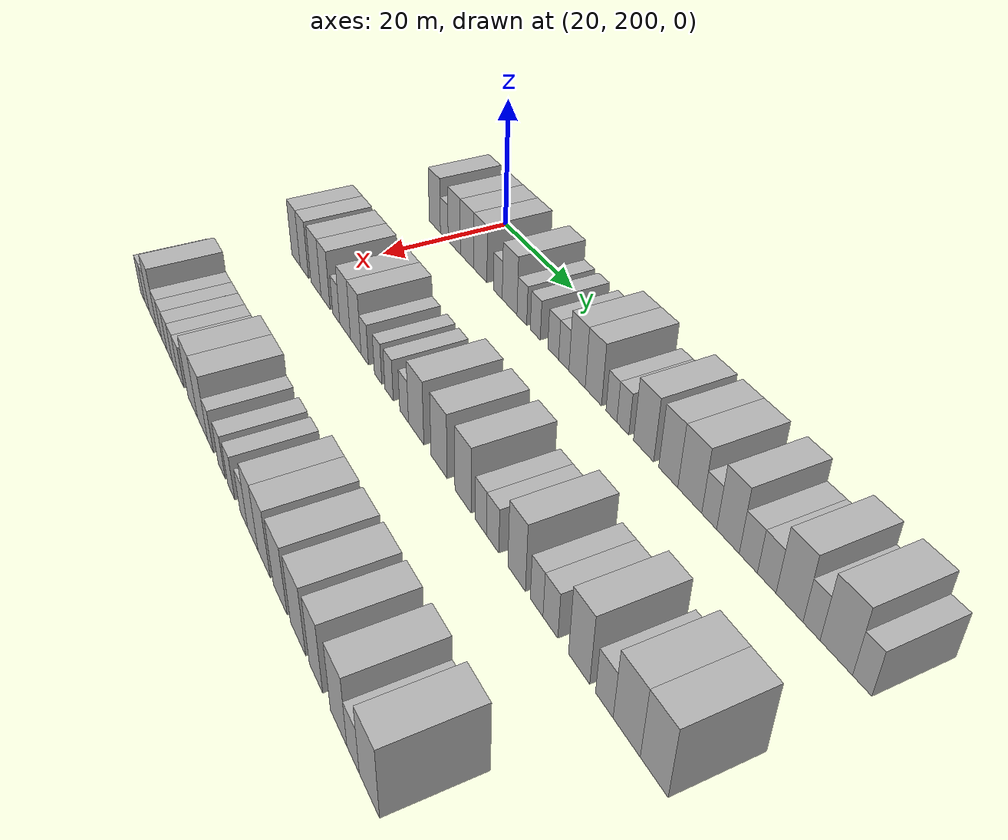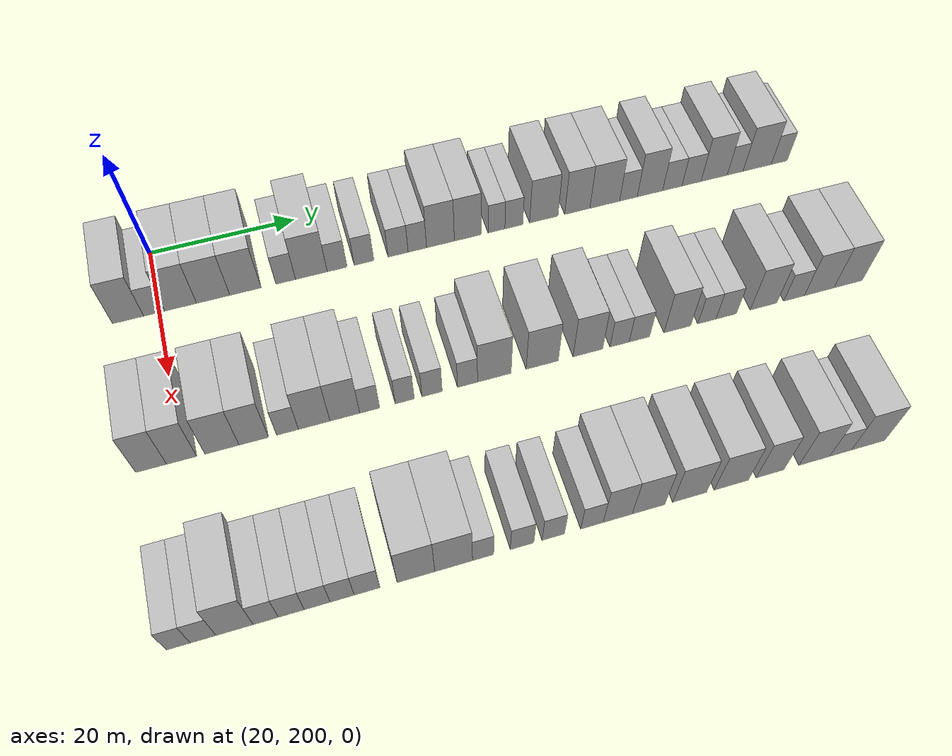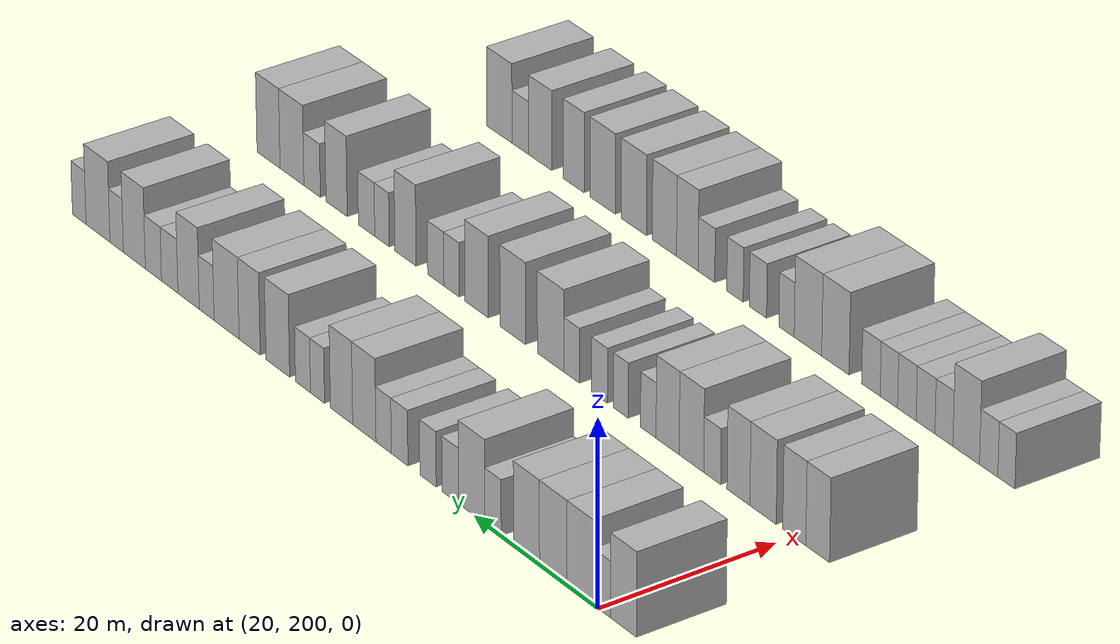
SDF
<sdf version="1.6">
 <world name="default">
  <model name="building_133">
   <static>1</static>
   <pose>25.0000 195.9901 0 0.000000 0.000000 0.000000</pose>
   <link name="link">
    <pose>0 0 4.50 0 0 0</pose>
    <collision name="collision"><geometry><box><size>10.0000 4.0446 9.0000</size></box></geometry></collision>
    <visual name="visual">
     <cast_shadows>0</cast_shadows>
     <geometry><box><size>10.0000 4.0446 9.0000</size></box></geometry>
     <material>
      <script>
       <uri>model://HANNAS_wall/materials/scripts</uri>
       <uri>model://HANNAS_wall/materials/textures</uri>
       <name>vrc/HANNAS_wall</name>
      </script>
     </material>
    </visual>
   </link>
  </model>
  <model name="building_134">
   <static>1</static>
   <pose>25.0000 199.3831 0 0.000000 0.000000 0.000000</pose>
   <link name="link">
    <pose>0 0 3.00 0 0 0</pose>
    <collision name="collision"><geometry><box><size>10.0000 2.7415 6.0000</size></box></geometry></collision>
    <visual name="visual">
     <cast_shadows>0</cast_shadows>
     <geometry><box><size>10.0000 2.7415 6.0000</size></box></geometry>
     <material>
      <script>
       <uri>model://HANNAS_wall/materials/scripts</uri>
       <uri>model://HANNAS_wall/materials/textures</uri>
       <name>vrc/HANNAS_wall</name>
      </script>
     </material>
    </visual>
   </link>
  </model>
  <model name="building_135">
   <static>1</static>
   <pose>25.0000 202.8510 0 0.000000 0.000000 0.000000</pose>
   <link name="link">
    <pose>0 0 4.50 0 0 0</pose>
    <collision name="collision"><geometry><box><size>10.0000 4.1943 9.0000</size></box></geometry></collision>
    <visual name="visual">
     <cast_shadows>0</cast_shadows>
     <geometry><box><size>10.0000 4.1943 9.0000</size></box></geometry>
     <material>
      <script>
       <uri>model://HANNAS_wall/materials/scripts</uri>
       <uri>model://HANNAS_wall/materials/textures</uri>
       <name>vrc/HANNAS_wall</name>
      </script>
     </material>
    </visual>
   </link>
  </model>
  <model name="building_136">
   <static>1</static>
   <pose>25.0000 207.1552 0 0.000000 0.000000 0.000000</pose>
   <link name="link">
    <pose>0 0 4.50 0 0 0</pose>
    <collision name="collision"><geometry><box><size>10.0000 4.4139 9.0000</size></box></geometry></collision>
    <visual name="visual">
     <cast_shadows>0</cast_shadows>
     <geometry><box><size>10.0000 4.4139 9.0000</size></box></geometry>
     <material>
      <script>
       <uri>model://HANNAS_wall/materials/scripts</uri>
       <uri>model://HANNAS_wall/materials/textures</uri>
       <name>vrc/HANNAS_wall</name>
      </script>
     </material>
    </visual>
   </link>
  </model>
  <model name="building_137">
   <static>1</static>
   <pose>25.0000 211.4571 0 0.000000 0.000000 0.000000</pose>
   <link name="link">
    <pose>0 0 4.50 0 0 0</pose>
    <collision name="collision"><geometry><box><size>10.0000 4.1900 9.0000</size></box></geometry></collision>
    <visual name="visual">
     <cast_shadows>0</cast_shadows>
     <geometry><box><size>10.0000 4.1900 9.0000</size></box></geometry>
     <material>
      <script>
       <uri>model://HANNAS_wall/materials/scripts</uri>
       <uri>model://HANNAS_wall/materials/textures</uri>
       <name>vrc/HANNAS_wall</name>
      </script>
     </material>
    </visual>
   </link>
  </model>
  <model name="building_138">
   <static>1</static>
   <pose>25.0000 216.8864 0 0.000000 0.000000 0.000000</pose>
   <link name="link">
    <pose>0 0 3.00 0 0 0</pose>
    <collision name="collision"><geometry><box><size>10.0000 2.6686 6.0000</size></box></geometry></collision>
    <visual name="visual">
     <cast_shadows>0</cast_shadows>
     <geometry><box><size>10.0000 2.6686 6.0000</size></box></geometry>
     <material>
      <script>
       <uri>model://HANNAS_wall/materials/scripts</uri>
       <uri>model://HANNAS_wall/materials/textures</uri>
       <name>vrc/HANNAS_wall</name>
      </script>
     </material>
    </visual>
   </link>
  </model>
  <model name="building_139">
   <static>1</static>
   <pose>25.0000 220.3830 0 0.000000 0.000000 0.000000</pose>
   <link name="link">
    <pose>0 0 4.50 0 0 0</pose>
    <collision name="collision"><geometry><box><size>10.0000 4.3248 9.0000</size></box></geometry></collision>
    <visual name="visual">
     <cast_shadows>0</cast_shadows>
     <geometry><box><size>10.0000 4.3248 9.0000</size></box></geometry>
     <material>
      <script>
       <uri>model://HANNAS_wall/materials/scripts</uri>
       <uri>model://HANNAS_wall/materials/textures</uri>
       <name>vrc/HANNAS_wall</name>
      </script>
     </material>
    </visual>
   </link>
  </model>
  <model name="building_140">
   <static>1</static>
   <pose>25.0000 223.9097 0 0.000000 0.000000 0.000000</pose>
   <link name="link">
    <pose>0 0 3.00 0 0 0</pose>
    <collision name="collision"><geometry><box><size>10.0000 2.7286 6.0000</size></box></geometry></collision>
    <visual name="visual">
     <cast_shadows>0</cast_shadows>
     <geometry><box><size>10.0000 2.7286 6.0000</size></box></geometry>
     <material>
      <script>
       <uri>model://HANNAS_wall/materials/scripts</uri>
       <uri>model://HANNAS_wall/materials/textures</uri>
       <name>vrc/HANNAS_wall</name>
      </script>
     </material>
    </visual>
   </link>
  </model>
  <model name="building_141">
   <static>1</static>
   <pose>25.0000 227.6299 0 0.000000 0.000000 0.000000</pose>
   <link name="link">
    <pose>0 0 3.00 0 0 0</pose>
    <collision name="collision"><geometry><box><size>10.0000 2.7117 6.0000</size></box></geometry></collision>
    <visual name="visual">
     <cast_shadows>0</cast_shadows>
     <geometry><box><size>10.0000 2.7117 6.0000</size></box></geometry>
     <material>
      <script>
       <uri>model://HANNAS_wall/materials/scripts</uri>
       <uri>model://HANNAS_wall/materials/textures</uri>
       <name>vrc/HANNAS_wall</name>
      </script>
     </material>
    </visual>
   </link>
  </model>
  <model name="building_142">
   <static>1</static>
   <pose>25.0000 232.3908 0 0.000000 0.000000 0.000000</pose>
   <link name="link">
    <pose>0 0 3.00 0 0 0</pose>
    <collision name="collision"><geometry><box><size>10.0000 2.8102 6.0000</size></box></geometry></collision>
    <visual name="visual">
     <cast_shadows>0</cast_shadows>
     <geometry><box><size>10.0000 2.8102 6.0000</size></box></geometry>
     <material>
      <script>
       <uri>model://HANNAS_wall/materials/scripts</uri>
       <uri>model://HANNAS_wall/materials/textures</uri>
       <name>vrc/HANNAS_wall</name>
      </script>
     </material>
    </visual>
   </link>
  </model>
  <model name="building_143">
   <static>1</static>
   <pose>25.0000 235.0954 0 0.000000 0.000000 0.000000</pose>
   <link name="link">
    <pose>0 0 3.00 0 0 0</pose>
    <collision name="collision"><geometry><box><size>10.0000 2.5990 6.0000</size></box></geometry></collision>
    <visual name="visual">
     <cast_shadows>0</cast_shadows>
     <geometry><box><size>10.0000 2.5990 6.0000</size></box></geometry>
     <material>
      <script>
       <uri>model://HANNAS_wall/materials/scripts</uri>
       <uri>model://HANNAS_wall/materials/textures</uri>
       <name>vrc/HANNAS_wall</name>
      </script>
     </material>
    </visual>
   </link>
  </model>
  <model name="building_144">
   <static>1</static>
   <pose>25.0000 238.3739 0 0.000000 0.000000 0.000000</pose>
   <link name="link">
    <pose>0 0 4.50 0 0 0</pose>
    <collision name="collision"><geometry><box><size>10.0000 3.9578 9.0000</size></box></geometry></collision>
    <visual name="visual">
     <cast_shadows>0</cast_shadows>
     <geometry><box><size>10.0000 3.9578 9.0000</size></box></geometry>
     <material>
      <script>
       <uri>model://HANNAS_wall/materials/scripts</uri>
       <uri>model://HANNAS_wall/materials/textures</uri>
       <name>vrc/HANNAS_wall</name>
      </script>
     </material>
    </visual>
   </link>
  </model>
  <model name="building_145">
   <static>1</static>
   <pose>25.0000 242.2672 0 0.000000 0.000000 0.000000</pose>
   <link name="link">
    <pose>0 0 4.50 0 0 0</pose>
    <collision name="collision"><geometry><box><size>10.0000 3.8289 9.0000</size></box></geometry></collision>
    <visual name="visual">
     <cast_shadows>0</cast_shadows>
     <geometry><box><size>10.0000 3.8289 9.0000</size></box></geometry>
     <material>
      <script>
       <uri>model://HANNAS_wall/materials/scripts</uri>
       <uri>model://HANNAS_wall/materials/textures</uri>
       <name>vrc/HANNAS_wall</name>
      </script>
     </material>
    </visual>
   </link>
  </model>
  <model name="building_146">
   <static>1</static>
   <pose>25.0000 246.3987 0 0.000000 0.000000 0.000000</pose>
   <link name="link">
    <pose>0 0 3.00 0 0 0</pose>
    <collision name="collision"><geometry><box><size>10.0000 2.4340 6.0000</size></box></geometry></collision>
    <visual name="visual">
     <cast_shadows>0</cast_shadows>
     <geometry><box><size>10.0000 2.4340 6.0000</size></box></geometry>
     <material>
      <script>
       <uri>model://HANNAS_wall/materials/scripts</uri>
       <uri>model://HANNAS_wall/materials/textures</uri>
       <name>vrc/HANNAS_wall</name>
      </script>
     </material>
    </visual>
   </link>
  </model>
  <model name="building_147">
   <static>1</static>
   <pose>25.0000 248.9169 0 0.000000 0.000000 0.000000</pose>
   <link name="link">
    <pose>0 0 3.00 0 0 0</pose>
    <collision name="collision"><geometry><box><size>10.0000 2.6023 6.0000</size></box></geometry></collision>
    <visual name="visual">
     <cast_shadows>0</cast_shadows>
     <geometry><box><size>10.0000 2.6023 6.0000</size></box></geometry>
     <material>
      <script>
       <uri>model://HANNAS_wall/materials/scripts</uri>
       <uri>model://HANNAS_wall/materials/textures</uri>
       <name>vrc/HANNAS_wall</name>
      </script>
     </material>
    </visual>
   </link>
  </model>
  <model name="building_148">
   <static>1</static>
   <pose>25.0000 253.2998 0 0.000000 0.000000 0.000000</pose>
   <link name="link">
    <pose>0 0 4.50 0 0 0</pose>
    <collision name="collision"><geometry><box><size>10.0000 4.1634 9.0000</size></box></geometry></collision>
    <visual name="visual">
     <cast_shadows>0</cast_shadows>
     <geometry><box><size>10.0000 4.1634 9.0000</size></box></geometry>
     <material>
      <script>
       <uri>model://HANNAS_wall/materials/scripts</uri>
       <uri>model://HANNAS_wall/materials/textures</uri>
       <name>vrc/HANNAS_wall</name>
      </script>
     </material>
    </visual>
   </link>
  </model>
  <model name="building_149">
   <static>1</static>
   <pose>25.0000 258.2500 0 0.000000 0.000000 0.000000</pose>
   <link name="link">
    <pose>0 0 4.50 0 0 0</pose>
    <collision name="collision"><geometry><box><size>10.0000 3.7370 9.0000</size></box></geometry></collision>
    <visual name="visual">
     <cast_shadows>0</cast_shadows>
     <geometry><box><size>10.0000 3.7370 9.0000</size></box></geometry>
     <material>
      <script>
       <uri>model://HANNAS_wall/materials/scripts</uri>
       <uri>model://HANNAS_wall/materials/textures</uri>
       <name>vrc/HANNAS_wall</name>
      </script>
     </material>
    </visual>
   </link>
  </model>
  <model name="building_150">
   <static>1</static>
   <pose>25.0000 262.3416 0 0.000000 0.000000 0.000000</pose>
   <link name="link">
    <pose>0 0 4.50 0 0 0</pose>
    <collision name="collision"><geometry><box><size>10.0000 4.4462 9.0000</size></box></geometry></collision>
    <visual name="visual">
     <cast_shadows>0</cast_shadows>
     <geometry><box><size>10.0000 4.4462 9.0000</size></box></geometry>
     <material>
      <script>
       <uri>model://HANNAS_wall/materials/scripts</uri>
       <uri>model://HANNAS_wall/materials/textures</uri>
       <name>vrc/HANNAS_wall</name>
      </script>
     </material>
    </visual>
   </link>
  </model>
  <model name="building_151">
   <static>1</static>
   <pose>25.0000 265.8922 0 0.000000 0.000000 0.000000</pose>
   <link name="link">
    <pose>0 0 3.00 0 0 0</pose>
    <collision name="collision"><geometry><box><size>10.0000 2.6550 6.0000</size></box></geometry></collision>
    <visual name="visual">
     <cast_shadows>0</cast_shadows>
     <geometry><box><size>10.0000 2.6550 6.0000</size></box></geometry>
     <material>
      <script>
       <uri>model://HANNAS_wall/materials/scripts</uri>
       <uri>model://HANNAS_wall/materials/textures</uri>
       <name>vrc/HANNAS_wall</name>
      </script>
     </material>
    </visual>
   </link>
  </model>
  <model name="building_152">
   <static>1</static>
   <pose>25.0000 269.1450 0 0.000000 0.000000 0.000000</pose>
   <link name="link">
    <pose>0 0 4.50 0 0 0</pose>
    <collision name="collision"><geometry><box><size>10.0000 3.8507 9.0000</size></box></geometry></collision>
    <visual name="visual">
     <cast_shadows>0</cast_shadows>
     <geometry><box><size>10.0000 3.8507 9.0000</size></box></geometry>
     <material>
      <script>
       <uri>model://HANNAS_wall/materials/scripts</uri>
       <uri>model://HANNAS_wall/materials/textures</uri>
       <name>vrc/HANNAS_wall</name>
      </script>
     </material>
    </visual>
   </link>
  </model>
  <model name="building_153">
   <static>1</static>
   <pose>25.0000 272.5574 0 0.000000 0.000000 0.000000</pose>
   <link name="link">
    <pose>0 0 3.00 0 0 0</pose>
    <collision name="collision"><geometry><box><size>10.0000 2.9741 6.0000</size></box></geometry></collision>
    <visual name="visual">
     <cast_shadows>0</cast_shadows>
     <geometry><box><size>10.0000 2.9741 6.0000</size></box></geometry>
     <material>
      <script>
       <uri>model://HANNAS_wall/materials/scripts</uri>
       <uri>model://HANNAS_wall/materials/textures</uri>
       <name>vrc/HANNAS_wall</name>
      </script>
     </material>
    </visual>
   </link>
  </model>
  <model name="building_154">
   <static>1</static>
   <pose>25.0000 275.5117 0 0.000000 0.000000 0.000000</pose>
   <link name="link">
    <pose>0 0 3.00 0 0 0</pose>
    <collision name="collision"><geometry><box><size>10.0000 2.9344 6.0000</size></box></geometry></collision>
    <visual name="visual">
     <cast_shadows>0</cast_shadows>
     <geometry><box><size>10.0000 2.9344 6.0000</size></box></geometry>
     <material>
      <script>
       <uri>model://HANNAS_wall/materials/scripts</uri>
       <uri>model://HANNAS_wall/materials/textures</uri>
       <name>vrc/HANNAS_wall</name>
      </script>
     </material>
    </visual>
   </link>
  </model>
  <model name="building_155">
   <static>1</static>
   <pose>25.0000 279.0029 0 0.000000 0.000000 0.000000</pose>
   <link name="link">
    <pose>0 0 4.50 0 0 0</pose>
    <collision name="collision"><geometry><box><size>10.0000 4.0480 9.0000</size></box></geometry></collision>
    <visual name="visual">
     <cast_shadows>0</cast_shadows>
     <geometry><box><size>10.0000 4.0480 9.0000</size></box></geometry>
     <material>
      <script>
       <uri>model://HANNAS_wall/materials/scripts</uri>
       <uri>model://HANNAS_wall/materials/textures</uri>
       <name>vrc/HANNAS_wall</name>
      </script>
     </material>
    </visual>
   </link>
  </model>
  <model name="building_156">
   <static>1</static>
   <pose>25.0000 282.2533 0 0.000000 0.000000 0.000000</pose>
   <link name="link">
    <pose>0 0 3.00 0 0 0</pose>
    <collision name="collision"><geometry><box><size>10.0000 2.4528 6.0000</size></box></geometry></collision>
    <visual name="visual">
     <cast_shadows>0</cast_shadows>
     <geometry><box><size>10.0000 2.4528 6.0000</size></box></geometry>
     <material>
      <script>
       <uri>model://HANNAS_wall/materials/scripts</uri>
       <uri>model://HANNAS_wall/materials/textures</uri>
       <name>vrc/HANNAS_wall</name>
      </script>
     </material>
    </visual>
   </link>
  </model>
  <model name="building_157">
   <static>1</static>
   <pose>25.0000 285.7046 0 0.000000 0.000000 0.000000</pose>
   <link name="link">
    <pose>0 0 4.50 0 0 0</pose>
    <collision name="collision"><geometry><box><size>10.0000 4.4498 9.0000</size></box></geometry></collision>
    <visual name="visual">
     <cast_shadows>0</cast_shadows>
     <geometry><box><size>10.0000 4.4498 9.0000</size></box></geometry>
     <material>
      <script>
       <uri>model://HANNAS_wall/materials/scripts</uri>
       <uri>model://HANNAS_wall/materials/textures</uri>
       <name>vrc/HANNAS_wall</name>
      </script>
     </material>
    </visual>
   </link>
  </model>
  <model name="building_158">
   <static>1</static>
   <pose>25.0000 289.1934 0 0.000000 0.000000 0.000000</pose>
   <link name="link">
    <pose>0 0 3.00 0 0 0</pose>
    <collision name="collision"><geometry><box><size>10.0000 2.5278 6.0000</size></box></geometry></collision>
    <visual name="visual">
     <cast_shadows>0</cast_shadows>
     <geometry><box><size>10.0000 2.5278 6.0000</size></box></geometry>
     <material>
      <script>
       <uri>model://HANNAS_wall/materials/scripts</uri>
       <uri>model://HANNAS_wall/materials/textures</uri>
       <name>vrc/HANNAS_wall</name>
      </script>
     </material>
    </visual>
   </link>
  </model>
  <model name="building_323">
   <static>1</static>
   <pose>47.0000 196.2749 0 0.000000 0.000000 0.000000</pose>
   <link name="link">
    <pose>0 0 4.50 0 0 0</pose>
    <collision name="collision"><geometry><box><size>10.0000 3.6909 9.0000</size></box></geometry></collision>
    <visual name="visual">
     <cast_shadows>0</cast_shadows>
     <geometry><box><size>10.0000 3.6909 9.0000</size></box></geometry>
     <material>
      <script>
       <uri>model://HANNAS_wall/materials/scripts</uri>
       <uri>model://HANNAS_wall/materials/textures</uri>
       <name>vrc/HANNAS_wall</name>
      </script>
     </material>
    </visual>
   </link>
  </model>
  <model name="building_324">
   <static>1</static>
   <pose>47.0000 199.9234 0 0.000000 0.000000 0.000000</pose>
   <link name="link">
    <pose>0 0 4.50 0 0 0</pose>
    <collision name="collision"><geometry><box><size>10.0000 3.6062 9.0000</size></box></geometry></collision>
    <visual name="visual">
     <cast_shadows>0</cast_shadows>
     <geometry><box><size>10.0000 3.6062 9.0000</size></box></geometry>
     <material>
      <script>
       <uri>model://HANNAS_wall/materials/scripts</uri>
       <uri>model://HANNAS_wall/materials/textures</uri>
       <name>vrc/HANNAS_wall</name>
      </script>
     </material>
    </visual>
   </link>
  </model>
  <model name="building_325">
   <static>1</static>
   <pose>47.0000 204.8001 0 0.000000 0.000000 0.000000</pose>
   <link name="link">
    <pose>0 0 4.50 0 0 0</pose>
    <collision name="collision"><geometry><box><size>10.0000 4.1473 9.0000</size></box></geometry></collision>
    <visual name="visual">
     <cast_shadows>0</cast_shadows>
     <geometry><box><size>10.0000 4.1473 9.0000</size></box></geometry>
     <material>
      <script>
       <uri>model://HANNAS_wall/materials/scripts</uri>
       <uri>model://HANNAS_wall/materials/textures</uri>
       <name>vrc/HANNAS_wall</name>
      </script>
     </material>
    </visual>
   </link>
  </model>
  <model name="building_326">
   <static>1</static>
   <pose>47.0000 208.6853 0 0.000000 0.000000 0.000000</pose>
   <link name="link">
    <pose>0 0 4.50 0 0 0</pose>
    <collision name="collision"><geometry><box><size>10.0000 3.6232 9.0000</size></box></geometry></collision>
    <visual name="visual">
     <cast_shadows>0</cast_shadows>
     <geometry><box><size>10.0000 3.6232 9.0000</size></box></geometry>
     <material>
      <script>
       <uri>model://HANNAS_wall/materials/scripts</uri>
       <uri>model://HANNAS_wall/materials/textures</uri>
       <name>vrc/HANNAS_wall</name>
      </script>
     </material>
    </visual>
   </link>
  </model>
  <model name="building_327">
   <static>1</static>
   <pose>47.0000 212.8510 0 0.000000 0.000000 0.000000</pose>
   <link name="link">
    <pose>0 0 3.00 0 0 0</pose>
    <collision name="collision"><geometry><box><size>10.0000 2.7082 6.0000</size></box></geometry></collision>
    <visual name="visual">
     <cast_shadows>0</cast_shadows>
     <geometry><box><size>10.0000 2.7082 6.0000</size></box></geometry>
     <material>
      <script>
       <uri>model://HANNAS_wall/materials/scripts</uri>
       <uri>model://HANNAS_wall/materials/textures</uri>
       <name>vrc/HANNAS_wall</name>
      </script>
     </material>
    </visual>
   </link>
  </model>
  <model name="building_328">
   <static>1</static>
   <pose>47.0000 216.1793 0 0.000000 0.000000 0.000000</pose>
   <link name="link">
    <pose>0 0 4.50 0 0 0</pose>
    <collision name="collision"><geometry><box><size>10.0000 3.9483 9.0000</size></box></geometry></collision>
    <visual name="visual">
     <cast_shadows>0</cast_shadows>
     <geometry><box><size>10.0000 3.9483 9.0000</size></box></geometry>
     <material>
      <script>
       <uri>model://HANNAS_wall/materials/scripts</uri>
       <uri>model://HANNAS_wall/materials/textures</uri>
       <name>vrc/HANNAS_wall</name>
      </script>
     </material>
    </visual>
   </link>
  </model>
  <model name="building_329">
   <static>1</static>
   <pose>47.0000 220.0280 0 0.000000 0.000000 0.000000</pose>
   <link name="link">
    <pose>0 0 4.50 0 0 0</pose>
    <collision name="collision"><geometry><box><size>10.0000 3.7492 9.0000</size></box></geometry></collision>
    <visual name="visual">
     <cast_shadows>0</cast_shadows>
     <geometry><box><size>10.0000 3.7492 9.0000</size></box></geometry>
     <material>
      <script>
       <uri>model://HANNAS_wall/materials/scripts</uri>
       <uri>model://HANNAS_wall/materials/textures</uri>
       <name>vrc/HANNAS_wall</name>
      </script>
     </material>
    </visual>
   </link>
  </model>
  <model name="building_330">
   <static>1</static>
   <pose>47.0000 223.1683 0 0.000000 0.000000 0.000000</pose>
   <link name="link">
    <pose>0 0 3.00 0 0 0</pose>
    <collision name="collision"><geometry><box><size>10.0000 2.5314 6.0000</size></box></geometry></collision>
    <visual name="visual">
     <cast_shadows>0</cast_shadows>
     <geometry><box><size>10.0000 2.5314 6.0000</size></box></geometry>
     <material>
      <script>
       <uri>model://HANNAS_wall/materials/scripts</uri>
       <uri>model://HANNAS_wall/materials/textures</uri>
       <name>vrc/HANNAS_wall</name>
      </script>
     </material>
    </visual>
   </link>
  </model>
  <model name="building_331">
   <static>1</static>
   <pose>47.0000 227.6521 0 0.000000 0.000000 0.000000</pose>
   <link name="link">
    <pose>0 0 3.00 0 0 0</pose>
    <collision name="collision"><geometry><box><size>10.0000 2.4362 6.0000</size></box></geometry></collision>
    <visual name="visual">
     <cast_shadows>0</cast_shadows>
     <geometry><box><size>10.0000 2.4362 6.0000</size></box></geometry>
     <material>
      <script>
       <uri>model://HANNAS_wall/materials/scripts</uri>
       <uri>model://HANNAS_wall/materials/textures</uri>
       <name>vrc/HANNAS_wall</name>
      </script>
     </material>
    </visual>
   </link>
  </model>
  <model name="building_332">
   <static>1</static>
   <pose>47.0000 231.1790 0 0.000000 0.000000 0.000000</pose>
   <link name="link">
    <pose>0 0 3.00 0 0 0</pose>
    <collision name="collision"><geometry><box><size>10.0000 2.6176 6.0000</size></box></geometry></collision>
    <visual name="visual">
     <cast_shadows>0</cast_shadows>
     <geometry><box><size>10.0000 2.6176 6.0000</size></box></geometry>
     <material>
      <script>
       <uri>model://HANNAS_wall/materials/scripts</uri>
       <uri>model://HANNAS_wall/materials/textures</uri>
       <name>vrc/HANNAS_wall</name>
      </script>
     </material>
    </visual>
   </link>
  </model>
  <model name="building_333">
   <static>1</static>
   <pose>47.0000 235.7939 0 0.000000 0.000000 0.000000</pose>
   <link name="link">
    <pose>0 0 3.00 0 0 0</pose>
    <collision name="collision"><geometry><box><size>10.0000 2.6123 6.0000</size></box></geometry></collision>
    <visual name="visual">
     <cast_shadows>0</cast_shadows>
     <geometry><box><size>10.0000 2.6123 6.0000</size></box></geometry>
     <material>
      <script>
       <uri>model://HANNAS_wall/materials/scripts</uri>
       <uri>model://HANNAS_wall/materials/textures</uri>
       <name>vrc/HANNAS_wall</name>
      </script>
     </material>
    </visual>
   </link>
  </model>
  <model name="building_334">
   <static>1</static>
   <pose>47.0000 239.3203 0 0.000000 0.000000 0.000000</pose>
   <link name="link">
    <pose>0 0 4.50 0 0 0</pose>
    <collision name="collision"><geometry><box><size>10.0000 4.4405 9.0000</size></box></geometry></collision>
    <visual name="visual">
     <cast_shadows>0</cast_shadows>
     <geometry><box><size>10.0000 4.4405 9.0000</size></box></geometry>
     <material>
      <script>
       <uri>model://HANNAS_wall/materials/scripts</uri>
       <uri>model://HANNAS_wall/materials/textures</uri>
       <name>vrc/HANNAS_wall</name>
      </script>
     </material>
    </visual>
   </link>
  </model>
  <model name="building_335">
   <static>1</static>
   <pose>47.0000 245.6986 0 0.000000 0.000000 0.000000</pose>
   <link name="link">
    <pose>0 0 4.50 0 0 0</pose>
    <collision name="collision"><geometry><box><size>10.0000 4.3161 9.0000</size></box></geometry></collision>
    <visual name="visual">
     <cast_shadows>0</cast_shadows>
     <geometry><box><size>10.0000 4.3161 9.0000</size></box></geometry>
     <material>
      <script>
       <uri>model://HANNAS_wall/materials/scripts</uri>
       <uri>model://HANNAS_wall/materials/textures</uri>
       <name>vrc/HANNAS_wall</name>
      </script>
     </material>
    </visual>
   </link>
  </model>
  <model name="building_336">
   <static>1</static>
   <pose>47.0000 251.8681 0 0.000000 0.000000 0.000000</pose>
   <link name="link">
    <pose>0 0 4.50 0 0 0</pose>
    <collision name="collision"><geometry><box><size>10.0000 4.0230 9.0000</size></box></geometry></collision>
    <visual name="visual">
     <cast_shadows>0</cast_shadows>
     <geometry><box><size>10.0000 4.0230 9.0000</size></box></geometry>
     <material>
      <script>
       <uri>model://HANNAS_wall/materials/scripts</uri>
       <uri>model://HANNAS_wall/materials/textures</uri>
       <name>vrc/HANNAS_wall</name>
      </script>
     </material>
    </visual>
   </link>
  </model>
  <model name="building_337">
   <static>1</static>
   <pose>47.0000 256.2046 0 0.000000 0.000000 0.000000</pose>
   <link name="link">
    <pose>0 0 3.00 0 0 0</pose>
    <collision name="collision"><geometry><box><size>10.0000 2.6501 6.0000</size></box></geometry></collision>
    <visual name="visual">
     <cast_shadows>0</cast_shadows>
     <geometry><box><size>10.0000 2.6501 6.0000</size></box></geometry>
     <material>
      <script>
       <uri>model://HANNAS_wall/materials/scripts</uri>
       <uri>model://HANNAS_wall/materials/textures</uri>
       <name>vrc/HANNAS_wall</name>
      </script>
     </material>
    </visual>
   </link>
  </model>
  <model name="building_338">
   <static>1</static>
   <pose>47.0000 258.9430 0 0.000000 0.000000 0.000000</pose>
   <link name="link">
    <pose>0 0 3.00 0 0 0</pose>
    <collision name="collision"><geometry><box><size>10.0000 2.8265 6.0000</size></box></geometry></collision>
    <visual name="visual">
     <cast_shadows>0</cast_shadows>
     <geometry><box><size>10.0000 2.8265 6.0000</size></box></geometry>
     <material>
      <script>
       <uri>model://HANNAS_wall/materials/scripts</uri>
       <uri>model://HANNAS_wall/materials/textures</uri>
       <name>vrc/HANNAS_wall</name>
      </script>
     </material>
    </visual>
   </link>
  </model>
  <model name="building_339">
   <static>1</static>
   <pose>47.0000 264.2258 0 0.000000 0.000000 0.000000</pose>
   <link name="link">
    <pose>0 0 4.50 0 0 0</pose>
    <collision name="collision"><geometry><box><size>10.0000 3.7393 9.0000</size></box></geometry></collision>
    <visual name="visual">
     <cast_shadows>0</cast_shadows>
     <geometry><box><size>10.0000 3.7393 9.0000</size></box></geometry>
     <material>
      <script>
       <uri>model://HANNAS_wall/materials/scripts</uri>
       <uri>model://HANNAS_wall/materials/textures</uri>
       <name>vrc/HANNAS_wall</name>
      </script>
     </material>
    </visual>
   </link>
  </model>
  <model name="building_340">
   <static>1</static>
   <pose>47.0000 268.3780 0 0.000000 0.000000 0.000000</pose>
   <link name="link">
    <pose>0 0 3.00 0 0 0</pose>
    <collision name="collision"><geometry><box><size>10.0000 2.5650 6.0000</size></box></geometry></collision>
    <visual name="visual">
     <cast_shadows>0</cast_shadows>
     <geometry><box><size>10.0000 2.5650 6.0000</size></box></geometry>
     <material>
      <script>
       <uri>model://HANNAS_wall/materials/scripts</uri>
       <uri>model://HANNAS_wall/materials/textures</uri>
       <name>vrc/HANNAS_wall</name>
      </script>
     </material>
    </visual>
   </link>
  </model>
  <model name="building_341">
   <static>1</static>
   <pose>47.0000 271.1112 0 0.000000 0.000000 0.000000</pose>
   <link name="link">
    <pose>0 0 3.00 0 0 0</pose>
    <collision name="collision"><geometry><box><size>10.0000 2.9014 6.0000</size></box></geometry></collision>
    <visual name="visual">
     <cast_shadows>0</cast_shadows>
     <geometry><box><size>10.0000 2.9014 6.0000</size></box></geometry>
     <material>
      <script>
       <uri>model://HANNAS_wall/materials/scripts</uri>
       <uri>model://HANNAS_wall/materials/textures</uri>
       <name>vrc/HANNAS_wall</name>
      </script>
     </material>
    </visual>
   </link>
  </model>
  <model name="building_342">
   <static>1</static>
   <pose>47.0000 276.4743 0 0.000000 0.000000 0.000000</pose>
   <link name="link">
    <pose>0 0 4.50 0 0 0</pose>
    <collision name="collision"><geometry><box><size>10.0000 3.8250 9.0000</size></box></geometry></collision>
    <visual name="visual">
     <cast_shadows>0</cast_shadows>
     <geometry><box><size>10.0000 3.8250 9.0000</size></box></geometry>
     <material>
      <script>
       <uri>model://HANNAS_wall/materials/scripts</uri>
       <uri>model://HANNAS_wall/materials/textures</uri>
       <name>vrc/HANNAS_wall</name>
      </script>
     </material>
    </visual>
   </link>
  </model>
  <model name="building_343">
   <static>1</static>
   <pose>47.0000 280.8802 0 0.000000 0.000000 0.000000</pose>
   <link name="link">
    <pose>0 0 3.00 0 0 0</pose>
    <collision name="collision"><geometry><box><size>10.0000 2.9868 6.0000</size></box></geometry></collision>
    <visual name="visual">
     <cast_shadows>0</cast_shadows>
     <geometry><box><size>10.0000 2.9868 6.0000</size></box></geometry>
     <material>
      <script>
       <uri>model://HANNAS_wall/materials/scripts</uri>
       <uri>model://HANNAS_wall/materials/textures</uri>
       <name>vrc/HANNAS_wall</name>
      </script>
     </material>
    </visual>
   </link>
  </model>
  <model name="building_344">
   <static>1</static>
   <pose>47.0000 284.5435 0 0.000000 0.000000 0.000000</pose>
   <link name="link">
    <pose>0 0 4.50 0 0 0</pose>
    <collision name="collision"><geometry><box><size>10.0000 4.3397 9.0000</size></box></geometry></collision>
    <visual name="visual">
     <cast_shadows>0</cast_shadows>
     <geometry><box><size>10.0000 4.3397 9.0000</size></box></geometry>
     <material>
      <script>
       <uri>model://HANNAS_wall/materials/scripts</uri>
       <uri>model://HANNAS_wall/materials/textures</uri>
       <name>vrc/HANNAS_wall</name>
      </script>
     </material>
    </visual>
   </link>
  </model>
  <model name="building_345">
   <static>1</static>
   <pose>47.0000 288.8147 0 0.000000 0.000000 0.000000</pose>
   <link name="link">
    <pose>0 0 4.50 0 0 0</pose>
    <collision name="collision"><geometry><box><size>10.0000 4.2028 9.0000</size></box></geometry></collision>
    <visual name="visual">
     <cast_shadows>0</cast_shadows>
     <geometry><box><size>10.0000 4.2028 9.0000</size></box></geometry>
     <material>
      <script>
       <uri>model://HANNAS_wall/materials/scripts</uri>
       <uri>model://HANNAS_wall/materials/textures</uri>
       <name>vrc/HANNAS_wall</name>
      </script>
     </material>
    </visual>
   </link>
  </model>
  <model name="building_518">
   <static>1</static>
   <pose>69.0000 196.5111 0 0.000000 0.000000 0.000000</pose>
   <link name="link">
    <pose>0 0 3.00 0 0 0</pose>
    <collision name="collision"><geometry><box><size>10.0000 2.6160 6.0000</size></box></geometry></collision>
    <visual name="visual">
     <cast_shadows>0</cast_shadows>
     <geometry><box><size>10.0000 2.6160 6.0000</size></box></geometry>
     <material>
      <script>
       <uri>model://HANNAS_wall/materials/scripts</uri>
       <uri>model://HANNAS_wall/materials/textures</uri>
       <name>vrc/HANNAS_wall</name>
      </script>
     </material>
    </visual>
   </link>
  </model>
  <model name="building_519">
   <static>1</static>
   <pose>69.0000 199.2239 0 0.000000 0.000000 0.000000</pose>
   <link name="link">
    <pose>0 0 3.00 0 0 0</pose>
    <collision name="collision"><geometry><box><size>10.0000 2.8096 6.0000</size></box></geometry></collision>
    <visual name="visual">
     <cast_shadows>0</cast_shadows>
     <geometry><box><size>10.0000 2.8096 6.0000</size></box></geometry>
     <material>
      <script>
       <uri>model://HANNAS_wall/materials/scripts</uri>
       <uri>model://HANNAS_wall/materials/textures</uri>
       <name>vrc/HANNAS_wall</name>
      </script>
     </material>
    </visual>
   </link>
  </model>
  <model name="building_520">
   <static>1</static>
   <pose>69.0000 202.6858 0 0.000000 0.000000 0.000000</pose>
   <link name="link">
    <pose>0 0 4.50 0 0 0</pose>
    <collision name="collision"><geometry><box><size>10.0000 4.1143 9.0000</size></box></geometry></collision>
    <visual name="visual">
     <cast_shadows>0</cast_shadows>
     <geometry><box><size>10.0000 4.1143 9.0000</size></box></geometry>
     <material>
      <script>
       <uri>model://HANNAS_wall/materials/scripts</uri>
       <uri>model://HANNAS_wall/materials/textures</uri>
       <name>vrc/HANNAS_wall</name>
      </script>
     </material>
    </visual>
   </link>
  </model>
  <model name="building_521">
   <static>1</static>
   <pose>69.0000 206.1484 0 0.000000 0.000000 0.000000</pose>
   <link name="link">
    <pose>0 0 3.00 0 0 0</pose>
    <collision name="collision"><geometry><box><size>10.0000 2.8109 6.0000</size></box></geometry></collision>
    <visual name="visual">
     <cast_shadows>0</cast_shadows>
     <geometry><box><size>10.0000 2.8109 6.0000</size></box></geometry>
     <material>
      <script>
       <uri>model://HANNAS_wall/materials/scripts</uri>
       <uri>model://HANNAS_wall/materials/textures</uri>
       <name>vrc/HANNAS_wall</name>
      </script>
     </material>
    </visual>
   </link>
  </model>
  <model name="building_522">
   <static>1</static>
   <pose>69.0000 209.0123 0 0.000000 0.000000 0.000000</pose>
   <link name="link">
    <pose>0 0 3.00 0 0 0</pose>
    <collision name="collision"><geometry><box><size>10.0000 2.9169 6.0000</size></box></geometry></collision>
    <visual name="visual">
     <cast_shadows>0</cast_shadows>
     <geometry><box><size>10.0000 2.9169 6.0000</size></box></geometry>
     <material>
      <script>
       <uri>model://HANNAS_wall/materials/scripts</uri>
       <uri>model://HANNAS_wall/materials/textures</uri>
       <name>vrc/HANNAS_wall</name>
      </script>
     </material>
    </visual>
   </link>
  </model>
  <model name="building_523">
   <static>1</static>
   <pose>69.0000 211.9354 0 0.000000 0.000000 0.000000</pose>
   <link name="link">
    <pose>0 0 3.00 0 0 0</pose>
    <collision name="collision"><geometry><box><size>10.0000 2.9292 6.0000</size></box></geometry></collision>
    <visual name="visual">
     <cast_shadows>0</cast_shadows>
     <geometry><box><size>10.0000 2.9292 6.0000</size></box></geometry>
     <material>
      <script>
       <uri>model://HANNAS_wall/materials/scripts</uri>
       <uri>model://HANNAS_wall/materials/textures</uri>
       <name>vrc/HANNAS_wall</name>
      </script>
     </material>
    </visual>
   </link>
  </model>
  <model name="building_524">
   <static>1</static>
   <pose>69.0000 214.7724 0 0.000000 0.000000 0.000000</pose>
   <link name="link">
    <pose>0 0 3.00 0 0 0</pose>
    <collision name="collision"><geometry><box><size>10.0000 2.7448 6.0000</size></box></geometry></collision>
    <visual name="visual">
     <cast_shadows>0</cast_shadows>
     <geometry><box><size>10.0000 2.7448 6.0000</size></box></geometry>
     <material>
      <script>
       <uri>model://HANNAS_wall/materials/scripts</uri>
       <uri>model://HANNAS_wall/materials/textures</uri>
       <name>vrc/HANNAS_wall</name>
      </script>
     </material>
    </visual>
   </link>
  </model>
  <model name="building_525">
   <static>1</static>
   <pose>69.0000 217.6253 0 0.000000 0.000000 0.000000</pose>
   <link name="link">
    <pose>0 0 3.00 0 0 0</pose>
    <collision name="collision"><geometry><box><size>10.0000 2.9612 6.0000</size></box></geometry></collision>
    <visual name="visual">
     <cast_shadows>0</cast_shadows>
     <geometry><box><size>10.0000 2.9612 6.0000</size></box></geometry>
     <material>
      <script>
       <uri>model://HANNAS_wall/materials/scripts</uri>
       <uri>model://HANNAS_wall/materials/textures</uri>
       <name>vrc/HANNAS_wall</name>
      </script>
     </material>
    </visual>
   </link>
  </model>
  <model name="building_526">
   <static>1</static>
   <pose>69.0000 223.3069 0 0.000000 0.000000 0.000000</pose>
   <link name="link">
    <pose>0 0 4.50 0 0 0</pose>
    <collision name="collision"><geometry><box><size>10.0000 4.4020 9.0000</size></box></geometry></collision>
    <visual name="visual">
     <cast_shadows>0</cast_shadows>
     <geometry><box><size>10.0000 4.4020 9.0000</size></box></geometry>
     <material>
      <script>
       <uri>model://HANNAS_wall/materials/scripts</uri>
       <uri>model://HANNAS_wall/materials/textures</uri>
       <name>vrc/HANNAS_wall</name>
      </script>
     </material>
    </visual>
   </link>
  </model>
  <model name="building_527">
   <static>1</static>
   <pose>69.0000 227.7308 0 0.000000 0.000000 0.000000</pose>
   <link name="link">
    <pose>0 0 4.50 0 0 0</pose>
    <collision name="collision"><geometry><box><size>10.0000 4.4458 9.0000</size></box></geometry></collision>
    <visual name="visual">
     <cast_shadows>0</cast_shadows>
     <geometry><box><size>10.0000 4.4458 9.0000</size></box></geometry>
     <material>
      <script>
       <uri>model://HANNAS_wall/materials/scripts</uri>
       <uri>model://HANNAS_wall/materials/textures</uri>
       <name>vrc/HANNAS_wall</name>
      </script>
     </material>
    </visual>
   </link>
  </model>
  <model name="building_528">
   <static>1</static>
   <pose>69.0000 231.2117 0 0.000000 0.000000 0.000000</pose>
   <link name="link">
    <pose>0 0 3.00 0 0 0</pose>
    <collision name="collision"><geometry><box><size>10.0000 2.5159 6.0000</size></box></geometry></collision>
    <visual name="visual">
     <cast_shadows>0</cast_shadows>
     <geometry><box><size>10.0000 2.5159 6.0000</size></box></geometry>
     <material>
      <script>
       <uri>model://HANNAS_wall/materials/scripts</uri>
       <uri>model://HANNAS_wall/materials/textures</uri>
       <name>vrc/HANNAS_wall</name>
      </script>
     </material>
    </visual>
   </link>
  </model>
  <model name="building_529">
   <static>1</static>
   <pose>69.0000 235.8911 0 0.000000 0.000000 0.000000</pose>
   <link name="link">
    <pose>0 0 3.00 0 0 0</pose>
    <collision name="collision"><geometry><box><size>10.0000 2.8430 6.0000</size></box></geometry></collision>
    <visual name="visual">
     <cast_shadows>0</cast_shadows>
     <geometry><box><size>10.0000 2.8430 6.0000</size></box></geometry>
     <material>
      <script>
       <uri>model://HANNAS_wall/materials/scripts</uri>
       <uri>model://HANNAS_wall/materials/textures</uri>
       <name>vrc/HANNAS_wall</name>
      </script>
     </material>
    </visual>
   </link>
  </model>
  <model name="building_530">
   <static>1</static>
   <pose>69.0000 239.6704 0 0.000000 0.000000 0.000000</pose>
   <link name="link">
    <pose>0 0 3.00 0 0 0</pose>
    <collision name="collision"><geometry><box><size>10.0000 2.7156 6.0000</size></box></geometry></collision>
    <visual name="visual">
     <cast_shadows>0</cast_shadows>
     <geometry><box><size>10.0000 2.7156 6.0000</size></box></geometry>
     <material>
      <script>
       <uri>model://HANNAS_wall/materials/scripts</uri>
       <uri>model://HANNAS_wall/materials/textures</uri>
       <name>vrc/HANNAS_wall</name>
      </script>
     </material>
    </visual>
   </link>
  </model>
  <model name="building_531">
   <static>1</static>
   <pose>69.0000 244.4135 0 0.000000 0.000000 0.000000</pose>
   <link name="link">
    <pose>0 0 3.00 0 0 0</pose>
    <collision name="collision"><geometry><box><size>10.0000 2.7705 6.0000</size></box></geometry></collision>
    <visual name="visual">
     <cast_shadows>0</cast_shadows>
     <geometry><box><size>10.0000 2.7705 6.0000</size></box></geometry>
     <material>
      <script>
       <uri>model://HANNAS_wall/materials/scripts</uri>
       <uri>model://HANNAS_wall/materials/textures</uri>
       <name>vrc/HANNAS_wall</name>
      </script>
     </material>
    </visual>
   </link>
  </model>
  <model name="building_532">
   <static>1</static>
   <pose>69.0000 247.6098 0 0.000000 0.000000 0.000000</pose>
   <link name="link">
    <pose>0 0 4.50 0 0 0</pose>
    <collision name="collision"><geometry><box><size>10.0000 3.6221 9.0000</size></box></geometry></collision>
    <visual name="visual">
     <cast_shadows>0</cast_shadows>
     <geometry><box><size>10.0000 3.6221 9.0000</size></box></geometry>
     <material>
      <script>
       <uri>model://HANNAS_wall/materials/scripts</uri>
       <uri>model://HANNAS_wall/materials/textures</uri>
       <name>vrc/HANNAS_wall</name>
      </script>
     </material>
    </visual>
   </link>
  </model>
  <model name="building_533">
   <static>1</static>
   <pose>69.0000 251.4680 0 0.000000 0.000000 0.000000</pose>
   <link name="link">
    <pose>0 0 4.50 0 0 0</pose>
    <collision name="collision"><geometry><box><size>10.0000 4.0945 9.0000</size></box></geometry></collision>
    <visual name="visual">
     <cast_shadows>0</cast_shadows>
     <geometry><box><size>10.0000 4.0945 9.0000</size></box></geometry>
     <material>
      <script>
       <uri>model://HANNAS_wall/materials/scripts</uri>
       <uri>model://HANNAS_wall/materials/textures</uri>
       <name>vrc/HANNAS_wall</name>
      </script>
     </material>
    </visual>
   </link>
  </model>
  <model name="building_534">
   <static>1</static>
   <pose>69.0000 256.6724 0 0.000000 0.000000 0.000000</pose>
   <link name="link">
    <pose>0 0 4.50 0 0 0</pose>
    <collision name="collision"><geometry><box><size>10.0000 4.3143 9.0000</size></box></geometry></collision>
    <visual name="visual">
     <cast_shadows>0</cast_shadows>
     <geometry><box><size>10.0000 4.3143 9.0000</size></box></geometry>
     <material>
      <script>
       <uri>model://HANNAS_wall/materials/scripts</uri>
       <uri>model://HANNAS_wall/materials/textures</uri>
       <name>vrc/HANNAS_wall</name>
      </script>
     </material>
    </visual>
   </link>
  </model>
  <model name="building_535">
   <static>1</static>
   <pose>69.0000 262.0299 0 0.000000 0.000000 0.000000</pose>
   <link name="link">
    <pose>0 0 4.50 0 0 0</pose>
    <collision name="collision"><geometry><box><size>10.0000 4.4008 9.0000</size></box></geometry></collision>
    <visual name="visual">
     <cast_shadows>0</cast_shadows>
     <geometry><box><size>10.0000 4.4008 9.0000</size></box></geometry>
     <material>
      <script>
       <uri>model://HANNAS_wall/materials/scripts</uri>
       <uri>model://HANNAS_wall/materials/textures</uri>
       <name>vrc/HANNAS_wall</name>
      </script>
     </material>
    </visual>
   </link>
  </model>
  <model name="building_536">
   <static>1</static>
   <pose>69.0000 267.0428 0 0.000000 0.000000 0.000000</pose>
   <link name="link">
    <pose>0 0 4.50 0 0 0</pose>
    <collision name="collision"><geometry><box><size>10.0000 3.6249 9.0000</size></box></geometry></collision>
    <visual name="visual">
     <cast_shadows>0</cast_shadows>
     <geometry><box><size>10.0000 3.6249 9.0000</size></box></geometry>
     <material>
      <script>
       <uri>model://HANNAS_wall/materials/scripts</uri>
       <uri>model://HANNAS_wall/materials/textures</uri>
       <name>vrc/HANNAS_wall</name>
      </script>
     </material>
    </visual>
   </link>
  </model>
  <model name="building_537">
   <static>1</static>
   <pose>69.0000 272.8952 0 0.000000 0.000000 0.000000</pose>
   <link name="link">
    <pose>0 0 4.50 0 0 0</pose>
    <collision name="collision"><geometry><box><size>10.0000 4.0800 9.0000</size></box></geometry></collision>
    <visual name="visual">
     <cast_shadows>0</cast_shadows>
     <geometry><box><size>10.0000 4.0800 9.0000</size></box></geometry>
     <material>
      <script>
       <uri>model://HANNAS_wall/materials/scripts</uri>
       <uri>model://HANNAS_wall/materials/textures</uri>
       <name>vrc/HANNAS_wall</name>
      </script>
     </material>
    </visual>
   </link>
  </model>
  <model name="building_538">
   <static>1</static>
   <pose>69.0000 276.3936 0 0.000000 0.000000 0.000000</pose>
   <link name="link">
    <pose>0 0 3.00 0 0 0</pose>
    <collision name="collision"><geometry><box><size>10.0000 2.9169 6.0000</size></box></geometry></collision>
    <visual name="visual">
     <cast_shadows>0</cast_shadows>
     <geometry><box><size>10.0000 2.9169 6.0000</size></box></geometry>
     <material>
      <script>
       <uri>model://HANNAS_wall/materials/scripts</uri>
       <uri>model://HANNAS_wall/materials/textures</uri>
       <name>vrc/HANNAS_wall</name>
      </script>
     </material>
    </visual>
   </link>
  </model>
  <model name="building_539">
   <static>1</static>
   <pose>69.0000 280.0993 0 0.000000 0.000000 0.000000</pose>
   <link name="link">
    <pose>0 0 4.50 0 0 0</pose>
    <collision name="collision"><geometry><box><size>10.0000 4.4944 9.0000</size></box></geometry></collision>
    <visual name="visual">
     <cast_shadows>0</cast_shadows>
     <geometry><box><size>10.0000 4.4944 9.0000</size></box></geometry>
     <material>
      <script>
       <uri>model://HANNAS_wall/materials/scripts</uri>
       <uri>model://HANNAS_wall/materials/textures</uri>
       <name>vrc/HANNAS_wall</name>
      </script>
     </material>
    </visual>
   </link>
  </model>
 </world>
</sdf>
